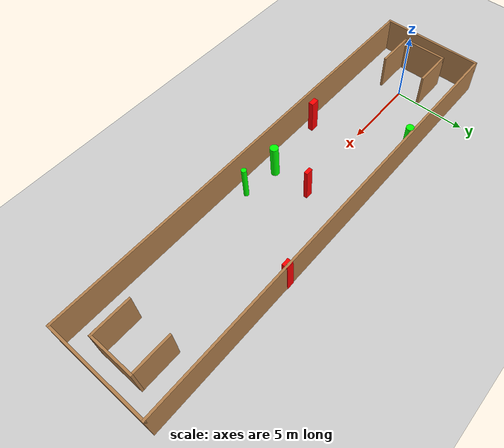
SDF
<sdf version="1.7">
 <world name="default">
  <light name="sun" type="directional">
   <pose>0 0 10 0 -0 0</pose>
   <diffuse>0.8 0.8 0.8 1</diffuse>
   <specular>0.2 0.2 0.2 1</specular>
   <attenuation>
    <range>1000</range>
    <constant>0.9</constant>
    <linear>0.01</linear>
    <quadratic>0.001</quadratic>
   </attenuation>
   <direction>-0.5 0.1 -0.9</direction>
   <spot><inner_angle>0</inner_angle><outer_angle>0</outer_angle><falloff>0</falloff></spot>
  </light>
  <model name="ground_plane">
   <static>1</static>
   <link name="link">
    <collision name="collision">
     <geometry><plane><normal>0 0 1</normal><size>100 100</size></plane></geometry>
     <surface>
      <contact><collide_bitmask>65535</collide_bitmask></contact>
      <friction><ode><mu>100</mu><mu2>50</mu2></ode></friction>
     </surface>
    </collision>
    <visual name="visual">
     <cast_shadows>0</cast_shadows>
     <geometry><plane><normal>0 0 1</normal><size>100 100</size></plane></geometry>
     <material>
      <script><uri>file://media/materials/scripts/gazebo.material</uri><name>Gazebo/Grey</name></script>
     </material>
    </visual>
   </link>
  </model>
  <gravity>0 0 -9.8</gravity>
  <magnetic_field>6e-06 2.3e-05 -4.2e-05</magnetic_field>
  <atmosphere type="adiabatic"/>
  <physics type="ode">
   <max_step_size>0.001</max_step_size>
   <real_time_factor>1</real_time_factor>
   <real_time_update_rate>1000</real_time_update_rate>
  </physics>
  <scene><ambient>0.4 0.4 0.4 1</ambient><background>0.7 0.7 0.7 1</background><shadows>1</shadows></scene>
  <spherical_coordinates>
   <surface_model>EARTH_WGS84</surface_model>
   <latitude_deg>0</latitude_deg>
   <longitude_deg>0</longitude_deg>
   <elevation>0</elevation>
   <heading_deg>0</heading_deg>
  </spherical_coordinates>
  <model name="my_base_walls">
   <link name="Wall_0">
    <collision name="Wall_0_Collision">
     <geometry><box><size>7.15 0.15 2.5</size></box></geometry>
     <pose>0 0 1.25 0 -0 0</pose>
    </collision>
    <visual name="Wall_0_Visual">
     <pose>0 0 1.25 0 -0 0</pose>
     <geometry><box><size>7.15 0.15 2.5</size></box></geometry>
     <material>
      <script><uri>file://media/materials/scripts/gazebo.material</uri><name>Gazebo/Wood</name></script>
      <ambient>1 1 1 1</ambient>
     </material>
     <meta><layer>0</layer></meta>
    </visual>
    <pose>-15 0 0 0 -0 1.5708</pose>
   </link>
   <link name="Wall_10">
    <collision name="Wall_10_Collision">
     <geometry><box><size>2.65 0.15 2.5</size></box></geometry>
     <pose>0 0 1.25 0 -0 0</pose>
    </collision>
    <visual name="Wall_10_Visual">
     <pose>0 0 1.25 0 -0 0</pose>
     <geometry><box><size>2.65 0.15 2.5</size></box></geometry>
     <material>
      <script><uri>file://media/materials/scripts/gazebo.material</uri><name>Gazebo/Wood</name></script>
      <ambient>1 1 1 1</ambient>
     </material>
     <meta><layer>0</layer></meta>
    </visual>
    <pose>-12.75 -1.5 0 0 -0 0</pose>
   </link>
   <link name="Wall_12">
    <collision name="Wall_12_Collision">
     <geometry><box><size>2.65 0.15 2.5</size></box></geometry>
     <pose>0 0 1.25 0 -0 0</pose>
    </collision>
    <visual name="Wall_12_Visual">
     <pose>0 0 1.25 0 -0 0</pose>
     <geometry><box><size>2.65 0.15 2.5</size></box></geometry>
     <material>
      <script><uri>file://media/materials/scripts/gazebo.material</uri><name>Gazebo/Wood</name></script>
      <ambient>1 1 1 1</ambient>
     </material>
     <meta><layer>0</layer></meta>
    </visual>
    <pose>-12.75 1.5 0 0 -0 0</pose>
   </link>
   <link name="Wall_14">
    <collision name="Wall_14_Collision">
     <geometry><box><size>3.15 0.15 2.5</size></box></geometry>
     <pose>0 0 1.25 0 -0 0</pose>
    </collision>
    <visual name="Wall_14_Visual">
     <pose>0 0 1.25 0 -0 0</pose>
     <geometry><box><size>3.15 0.15 2.5</size></box></geometry>
     <material>
      <script><uri>file://media/materials/scripts/gazebo.material</uri><name>Gazebo/Wood</name></script>
      <ambient>1 1 1 1</ambient>
     </material>
     <meta><layer>0</layer></meta>
    </visual>
    <pose>14 0 0 0 -0 -1.5708</pose>
   </link>
   <link name="Wall_15">
    <collision name="Wall_15_Collision">
     <geometry><box><size>2.65 0.15 2.5</size></box></geometry>
     <pose>0 0 1.25 0 -0 0</pose>
    </collision>
    <visual name="Wall_15_Visual">
     <pose>0 0 1.25 0 -0 0</pose>
     <geometry><box><size>2.65 0.15 2.5</size></box></geometry>
     <material>
      <script><uri>file://media/materials/scripts/gazebo.material</uri><name>Gazebo/Wood</name></script>
      <ambient>1 1 1 1</ambient>
     </material>
     <meta><layer>0</layer></meta>
    </visual>
    <pose>12.75 -1.5 0 0 -0 3.14159</pose>
   </link>
   <link name="Wall_17">
    <collision name="Wall_17_Collision">
     <geometry><box><size>2.65 0.15 2.5</size></box></geometry>
     <pose>0 0 1.25 0 -0 0</pose>
    </collision>
    <visual name="Wall_17_Visual">
     <pose>0 0 1.25 0 -0 0</pose>
     <geometry><box><size>2.65 0.15 2.5</size></box></geometry>
     <material>
      <script><uri>file://media/materials/scripts/gazebo.material</uri><name>Gazebo/Wood</name></script>
      <ambient>1 1 1 1</ambient>
     </material>
     <meta><layer>0</layer></meta>
    </visual>
    <pose>12.75 1.5 0 0 -0 3.14159</pose>
   </link>
   <link name="Wall_2">
    <collision name="Wall_2_Collision">
     <geometry><box><size>30.15 0.15 2.5</size></box></geometry>
     <pose>0 0 1.25 0 -0 0</pose>
    </collision>
    <visual name="Wall_2_Visual">
     <pose>0 0 1.25 0 -0 0</pose>
     <geometry><box><size>30.15 0.15 2.5</size></box></geometry>
     <material>
      <script><uri>file://media/materials/scripts/gazebo.material</uri><name>Gazebo/Wood</name></script>
      <ambient>1 1 1 1</ambient>
     </material>
     <meta><layer>0</layer></meta>
    </visual>
    <pose>-0 -3.5 0 0 -0 0</pose>
   </link>
   <link name="Wall_4">
    <collision name="Wall_4_Collision">
     <geometry><box><size>30.15 0.15 2.5</size></box></geometry>
     <pose>0 0 1.25 0 -0 0</pose>
    </collision>
    <visual name="Wall_4_Visual">
     <pose>0 0 1.25 0 -0 0</pose>
     <geometry><box><size>30.15 0.15 2.5</size></box></geometry>
     <material>
      <script><uri>file://media/materials/scripts/gazebo.material</uri><name>Gazebo/Wood</name></script>
      <ambient>1 1 1 1</ambient>
     </material>
     <meta><layer>0</layer></meta>
    </visual>
    <pose>-0 3.5 0 0 -0 0</pose>
   </link>
   <link name="Wall_6">
    <collision name="Wall_6_Collision">
     <geometry><box><size>7.15 0.15 2.5</size></box></geometry>
     <pose>0 0 1.25 0 -0 0</pose>
    </collision>
    <visual name="Wall_6_Visual">
     <pose>0 0 1.25 0 -0 0</pose>
     <geometry><box><size>7.15 0.15 2.5</size></box></geometry>
     <material>
      <script><uri>file://media/materials/scripts/gazebo.material</uri><name>Gazebo/Wood</name></script>
      <ambient>1 1 1 1</ambient>
     </material>
     <meta><layer>0</layer></meta>
    </visual>
    <pose>15 0 0 0 -0 -1.5708</pose>
   </link>
   <link name="Wall_9">
    <collision name="Wall_9_Collision">
     <geometry><box><size>3.15 0.15 2.5</size></box></geometry>
     <pose>0 0 1.25 0 -0 0</pose>
    </collision>
    <visual name="Wall_9_Visual">
     <pose>0 0 1.25 0 -0 0</pose>
     <geometry><box><size>3.15 0.15 2.5</size></box></geometry>
     <material>
      <script><uri>file://media/materials/scripts/gazebo.material</uri><name>Gazebo/Wood</name></script>
      <ambient>1 1 1 1</ambient>
     </material>
     <meta><layer>0</layer></meta>
    </visual>
    <pose>-14 0 0 0 -0 -1.5708</pose>
   </link>
   <static>1</static>
   <pose>11.5 0 0 0 -0 0</pose>
  </model>
  <model name="cylinder1">
   <static>1</static>
   <link name="link">
    <inertial>
     <mass>1</mass>
     <inertia><ixx>0.5</ixx><ixy>0</ixy><ixz>0</ixz><iyy>0.5</iyy><iyz>0</iyz><izz>1</izz></inertia>
    </inertial>
    <collision name="collision">
     <geometry><cylinder><radius>0.2658536369573755</radius><length>2.5</length></cylinder></geometry>
    </collision>
    <visual name="visual">
     <geometry><cylinder><radius>0.2658536369573755</radius><length>2.5</length></cylinder></geometry>
     <material>
      <ambient>0 1 0 1</ambient>
      <diffuse>0 1 0 1</diffuse>
      <specular>0.1 0.1 0.1 1</specular>
      <emissive>0 0 0 0</emissive>
     </material>
    </visual>
   </link>
   <pose>4.220914804307279 3.232100138389301 1.25 0 0 0</pose>
  </model>
  <model name="cylinder2">
   <static>1</static>
   <link name="link">
    <inertial>
     <mass>1</mass>
     <inertia><ixx>0.5</ixx><ixy>0</ixy><ixz>0</ixz><iyy>0.5</iyy><iyz>0</iyz><izz>1</izz></inertia>
    </inertial>
    <collision name="collision">
     <geometry><cylinder><radius>0.16996472003958152</radius><length>2.5</length></cylinder></geometry>
    </collision>
    <visual name="visual">
     <geometry><cylinder><radius>0.16996472003958152</radius><length>2.5</length></cylinder></geometry>
     <material>
      <ambient>0 1 0 1</ambient>
      <diffuse>0 1 0 1</diffuse>
      <specular>0.1 0.1 0.1 1</specular>
      <emissive>0 0 0 0</emissive>
     </material>
    </visual>
   </link>
   <pose>13.287984272634917 -2.5289934605056263 1.25 0 0 0</pose>
  </model>
  <model name="cylinder3">
   <static>1</static>
   <link name="link">
    <inertial>
     <mass>1</mass>
     <inertia><ixx>0.5</ixx><ixy>0</ixy><ixz>0</ixz><iyy>0.5</iyy><iyz>0</iyz><izz>1</izz></inertia>
    </inertial>
    <collision name="collision">
     <geometry><cylinder><radius>0.27589411841243094</radius><length>2.5</length></cylinder></geometry>
    </collision>
    <visual name="visual">
     <geometry><cylinder><radius>0.27589411841243094</radius><length>2.5</length></cylinder></geometry>
     <material>
      <ambient>0 1 0 1</ambient>
      <diffuse>0 1 0 1</diffuse>
      <specular>0.1 0.1 0.1 1</specular>
      <emissive>0 0 0 0</emissive>
     </material>
    </visual>
   </link>
   <pose>10.86526962602889 -2.2469340661672055 1.25 0 0 0</pose>
  </model>
  <model name="box1">
   <static>1</static>
   <link name="link">
    <inertial>
     <mass>1</mass>
     <inertia><ixx>0.083</ixx><ixy>0</ixy><ixz>0</ixz><iyy>0.083</iyy><iyz>0</iyz><izz>0.083</izz></inertia>
    </inertial>
    <collision name="collision">
     <geometry><box><size>0.49636200389598356 0.3917884804788414 2.5</size></box></geometry>
    </collision>
    <visual name="visual">
     <geometry><box><size>0.49636200389598356 0.3917884804788414 2.5</size></box></geometry>
     <material>
      <ambient>1 0 0 1</ambient>
      <diffuse>1 0 0 1</diffuse>
      <specular>0.1 0.1 0.1 1</specular>
      <emissive>0 0 0 0</emissive>
     </material>
    </visual>
    <sensor name="my_contact" type="contact">
     <contact><collision>box_collision</collision><topic>__default_topic__</topic></contact>
    </sensor>
   </link>
   <pose>16.34296635565023 3.412845394026366 1.25 0 0 0</pose>
  </model>
  <model name="box2">
   <static>1</static>
   <link name="link">
    <inertial>
     <mass>1</mass>
     <inertia><ixx>0.083</ixx><ixy>0</ixy><ixz>0</ixz><iyy>0.083</iyy><iyz>0</iyz><izz>0.083</izz></inertia>
    </inertial>
    <collision name="collision">
     <geometry><box><size>0.4778272707649144 0.2491412051308262 2.5</size></box></geometry>
    </collision>
    <visual name="visual">
     <geometry><box><size>0.4778272707649144 0.2491412051308262 2.5</size></box></geometry>
     <material>
      <ambient>1 0 0 1</ambient>
      <diffuse>1 0 0 1</diffuse>
      <specular>0.1 0.1 0.1 1</specular>
      <emissive>0 0 0 0</emissive>
     </material>
    </visual>
    <sensor name="my_contact" type="contact">
     <contact><collision>box_collision</collision><topic>__default_topic__</topic></contact>
    </sensor>
   </link>
   <pose>10.90777996869557 0.44279577180007124 1.25 0 0 0</pose>
  </model>
  <model name="box3">
   <static>1</static>
   <link name="link">
    <inertial>
     <mass>1</mass>
     <inertia><ixx>0.083</ixx><ixy>0</ixy><ixz>0</ixz><iyy>0.083</iyy><iyz>0</iyz><izz>0.083</izz></inertia>
    </inertial>
    <collision name="collision">
     <geometry><box><size>0.5582299447441614 0.33729402417467 2.5</size></box></geometry>
    </collision>
    <visual name="visual">
     <geometry><box><size>0.5582299447441614 0.33729402417467 2.5</size></box></geometry>
     <material>
      <ambient>1 0 0 1</ambient>
      <diffuse>1 0 0 1</diffuse>
      <specular>0.1 0.1 0.1 1</specular>
      <emissive>0 0 0 0</emissive>
     </material>
    </visual>
    <sensor name="my_contact" type="contact">
     <contact><collision>box_collision</collision><topic>__default_topic__</topic></contact>
    </sensor>
   </link>
   <pose>6.339902825922884 -2.795066298484487 1.25 0 0 0</pose>
  </model>
 </world>
</sdf>
